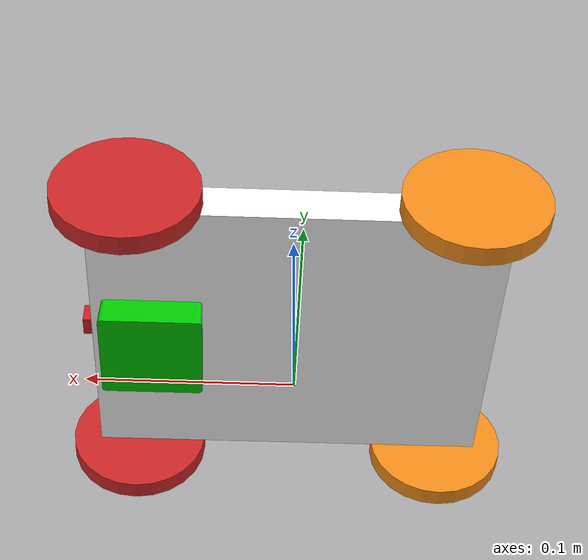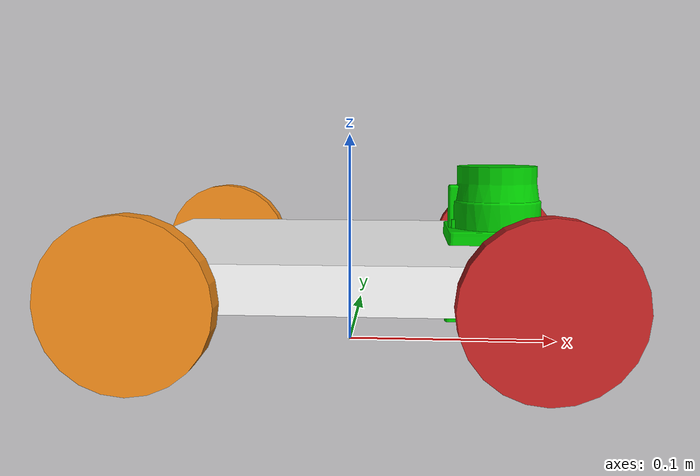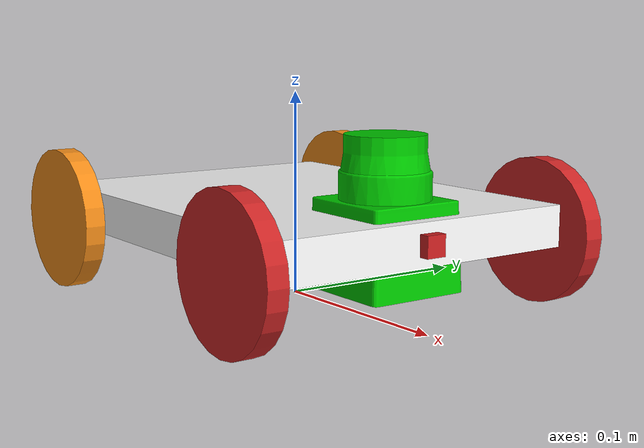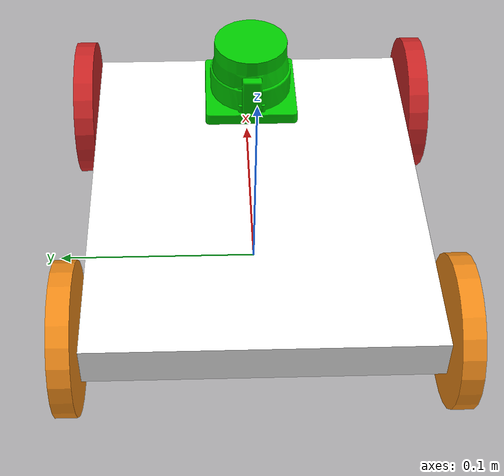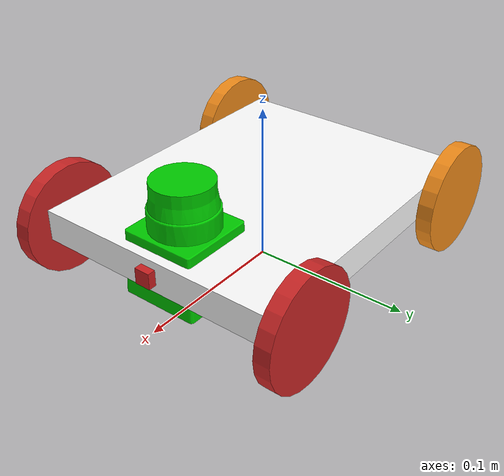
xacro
<?xml version="1.0"?>
<robot name="m4w_robot" xmlns:xacro="http://www.ros.org/wiki/xacro">
<xacro:include filename="$(find mybot_description)/urdf/materials.xacro" />
<xacro:include filename="$(find mybot_description)/urdf/m4w_robot.gazebo" />

  <xacro:property name="base_width" value="0.16"/>
  <xacro:property name="base_len" value="0.2"/>
  <xacro:property name="wheel_radius" value="0.035"/>
  <xacro:property name="base_wheel_gap" value="0.007"/>
  <xacro:property name="wheel_separation" value="0.15"/>
  <xacro:property name="wheel_joint_offset" value="0.02"/>

  <xacro:macro name="box_inertia" params="m w h d">
    <inertial>
      <mass value="${m}"/>
      <inertia ixx="${m / 12.0 * (d*d + h*h)}" ixy="0.0" ixz="0.0" iyy="${m / 12.0 * (w*w + h*h)}" iyz="0.0" izz="${m / 12.0 * (w*w + d*d)}"/>
    </inertial>
  </xacro:macro>

  <link name="base_footprint">
    <xacro:box_inertia m="20" w="0.001" h="0.001" d="0.001"/>
    <visual>
        <origin xyz="0 0 0" rpy="0 0 0" />
        <geometry>
            <box size="0.001 0.001 0.001" />
        </geometry>
	<material name="green"/>
    </visual>
  </link>

  <link name="base_link">
    <xacro:box_inertia m="10" w="${base_len}" h="${base_width}" d="0.02"/>
    <visual>
      <geometry>
        <box size="${base_len} ${base_width} 0.02"/>
      </geometry>
<material name="white"/>
    </visual>
    <collision>
      <geometry>
        <box size="${base_len} ${base_width} 0.02"/>
      </geometry>

    </collision>
  </link>
   <xacro:macro name="cylinder_inertia" params="m r h">
    <inertial>
      <mass value="${m}"/>
      <inertia ixx="${m*(3*r*r+h*h)/12}" ixy = "0" ixz = "0" iyy="${m*(3*r*r+h*h)/12}" iyz = "0" izz="${m*r*r/2}"/>
    </inertial>
  </xacro:macro>

  <xacro:macro name="wheel" params="prefix reflect wheel_joint">
    <link name="${prefix}_wheel">
      <visual>
        <origin xyz="0 0 0" rpy="${pi/2} 0 0"/>
        <geometry>
          <cylinder radius="${wheel_radius}" length="0.01"/>
        </geometry>
      </visual>
      <collision>
        <origin xyz="0 0 0" rpy="${pi/2} 0 0"/>
        <geometry>
          <cylinder radius="${wheel_radius}" length="0.01"/>
        </geometry>
      </collision>
      <xacro:cylinder_inertia m="10" r="${wheel_radius}" h="0.005"/>
    </link>

    <joint name="${prefix}_wheel_joint" type="continuous">
      <axis xyz="0 1 0" rpy="0 0 0" />
      <parent link="base_link"/>
      <child link="${prefix}_wheel"/>
      <origin xyz="${wheel_joint} ${((base_width/2)+base_wheel_gap)*reflect} -0.005" rpy="0 0 0"/>
    </joint>
  </xacro:macro>

  <xacro:wheel prefix="left" reflect="1" wheel_joint="0.08" />
  <xacro:wheel prefix="right" reflect="-1" wheel_joint="0.08"/>
  <xacro:wheel prefix="left_f" reflect="1" wheel_joint="-0.08" />
  <xacro:wheel prefix="right_f" reflect="-1" wheel_joint="-0.08"/>
  <joint name="base_link_joint" type="fixed">
    <origin xyz="0 0 ${wheel_radius + 0.005}" rpy="0 0 0" />
    <parent link="base_footprint"/>
    <child link="base_link" />
  </joint>

<!-- Size of square 'camera' box -->
<xacro:property name="camera_link" value="0.01" />

  <!-- Camera -->
  <link name="camera_link">
    <collision>
      <origin xyz="0 0 0" rpy="0 0 0"/>
      <geometry>
    <box size="${camera_link} ${camera_link} ${camera_link}"/>
      </geometry>
    </collision>

    <visual>
      <origin xyz="0 0 0" rpy="0 0 0"/>
      <geometry>
    <box size="${camera_link} ${camera_link} ${camera_link}"/>
      </geometry>
      <material name="red"/>
    </visual>

    <inertial>
      <mass value="0.1" />
      <origin xyz="0 0 0" rpy="0 0 0"/>
      <inertia ixx="1e-6" ixy="0" ixz="0" iyy="1e-6" iyz="0" izz="1e-6" />
    </inertial>
  </link>

<joint name="camera_joint" type="fixed">
    <axis xyz="0 1 0" />
    <origin xyz="${base_len/2} 0 0" rpy="0 0 0"/>
    <parent link="base_link"/>
    <child link="camera_link"/>
  </joint>

<!-- Hokuyo Laser -->
<link name="hokuyo">
<collision>
<origin xyz="0 0 0" rpy="0 0 0"/>
<geometry>
<box size="0.03 0.03 0.03"/>
</geometry>
</collision>

<visual>
<origin xyz="0 0 0" rpy="0 0 0"/>
<geometry>
<mesh filename="package://mybot_description/meshes/hokuyo.dae"/>
</geometry>
<material name="green"/>
</visual>

<inertial>
<mass value="1e-5" />
<origin xyz="0 0 0" rpy="0 0 0"/>
<inertia ixx="1e-6" ixy="0" ixz="0" iyy="1e-6" iyz="0" izz="1e-6" />
</inertial>
</link>

<joint name="hokuyo_joint" type="fixed">
<axis xyz="0 1 0" />
<origin xyz="${base_len/2-0.03} 0 0.01" rpy="0 0 0"/>
<parent link="base_link"/>
<child link="hokuyo"/>
</joint>

</robot>

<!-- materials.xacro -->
<robot name="m2w_robot" xmlns:xacro="https://www.ros.org/wiki/xacro" >

<material name="black">
    <color rgba="0.0 0.0 0.0 1.0"/>
  </material>
  <material name="blue">
    <color rgba="0.0 0.0 0.8 1.0"/>
  </material>
  <material name="green">
    <color rgba="0.0 0.8 0.0 1.0"/>
  </material>
  <material name="grey">
    <color rgba="0.2 0.2 0.2 1.0"/>
  </material>
  <material name="orange">
    <color rgba="1.0 0.423529411765 0.0392156862745 1.0"/>
  </material>
  <material name="brown">
    <color rgba="0.870588235294 0.811764705882 0.764705882353 1.0"/>
  </material>
  <material name="red">
    <color rgba="0.80078125 0.12890625 0.1328125 1.0"/>
  </material>
  <material name="white">
    <color rgba="1.0 1.0 1.0 1.0"/>
  </material>

</robot>
